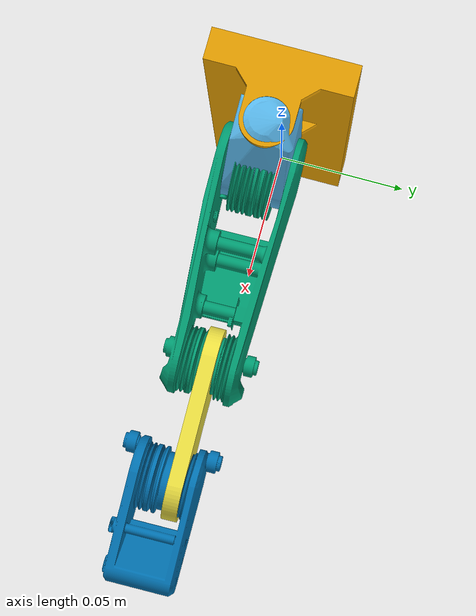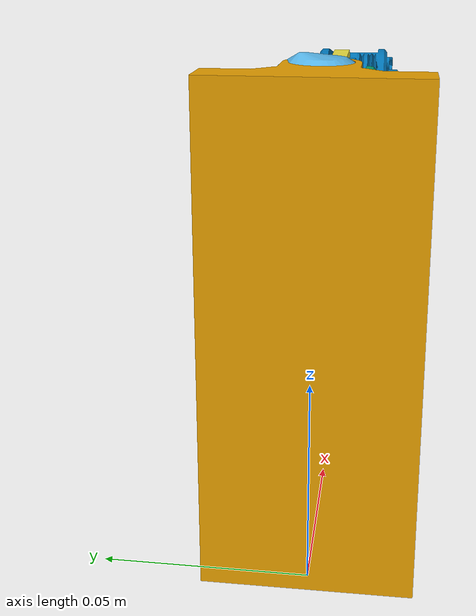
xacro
<?xml version="1.0"?>
<robot name="powerhouse_finger" xmlns:xacro="http://www.ros.org/wiki/xacro">

  <!-- Generated by blender_export.py from /home/jarmibe7/ws_rds/src/rds-powerhouse-software/finger_description/meshes/segment.blend -->

  <xacro:arg name="mesh_ext" default="gltf"/>
  <xacro:property name="ext" value="$(arg mesh_ext)"/>

  <material name="blue">
    <color rgba="0 0 1 1"/>
  </material>
  <material name="green">
    <color rgba="0 1 0 1"/>
  </material>
  <material name="red">
    <color rgba="1 0 0 1"/>
  </material>
  <material name="purple">
    <color rgba="1 0 1 1"/>
  </material>
  <material name="grey">
    <color rgba="0.5 0.5 0.5 1"/>
  </material>
  <material name="yellow">
    <color rgba="1 1 0 1"/>
  </material>

  <!-- Finger base -->
  <link name="base_link">
    <visual>
      <geometry>
        <mesh filename="package://finger_description/meshes/visual/base_link.${ext}"/>
      </geometry>
    </visual>
    <collision>
      <geometry>
        <mesh filename="package://finger_description/meshes/collision/col_base_link.${ext}"/>
      </geometry>
    </collision>
    <inertial>
      <mass value="0.05"/>
      <origin xyz="0 0 0" rpy="0 0 0"/>
      <inertia ixx="1e-05" ixy="0" ixz="0" iyy="1e-05" iyz="0" izz="1e-05"/>
    </inertial>
  </link>

  <!-- Mcp Splay -->
  <joint name="mcp_splay" type="revolute">
    <parent link="base_link"/>
    <child link="mcp_link"/>
    <origin xyz="0.0195 -0.0 0.0983" rpy="0 0 0"/>
    <axis xyz="0.0 0.0 1.0"/>
    <limit lower="-0.174533" upper="0.174533" effort="5.0" velocity="3.14"/>
    <dynamics damping="0.1" friction="0.05"/>
  </joint>

  <!-- Space between MCP splay and flexion -->
  <link name="mcp_link">
    <visual>
      <geometry>
        <mesh filename="package://finger_description/meshes/visual/mcp_link.${ext}"/>
      </geometry>
    </visual>
    <collision>
      <geometry>
        <mesh filename="package://finger_description/meshes/collision/col_mcp_link.${ext}"/>
      </geometry>
    </collision>
    <inertial>
      <mass value="0.01"/>
      <origin xyz="0 0 0" rpy="0 0 0"/>
      <inertia ixx="1e-05" ixy="0" ixz="0" iyy="1e-05" iyz="0" izz="1e-05"/>
    </inertial>
  </link>

  <!-- Mcp Flexion -->
  <joint name="mcp_flexion" type="revolute">
    <parent link="mcp_link"/>
    <child link="proximal_phalanx"/>
    <origin xyz="0.013 0.0 -0.0006" rpy="0 0 0"/>
    <axis xyz="0.0 1.0 0.0"/>
    <limit lower="0" upper="1.57" effort="5.0" velocity="3.14"/>
    <dynamics damping="0.1" friction="0.05"/>
  </joint>

  <!-- Proximal phalanx -->
  <link name="proximal_phalanx">
    <visual>
      <geometry>
        <mesh filename="package://finger_description/meshes/visual/proximal_phalanx.${ext}"/>
      </geometry>
    </visual>
    <collision>
      <geometry>
        <mesh filename="package://finger_description/meshes/collision/col_proximal_phalanx.${ext}"/>
      </geometry>
    </collision>
    <inertial>
      <mass value="0.01"/>
      <origin xyz="0 0 0" rpy="0 0 0"/>
      <inertia ixx="1e-05" ixy="0" ixz="0" iyy="1e-05" iyz="0" izz="1e-05"/>
    </inertial>
  </link>

  <!-- Pip Flexion -->
  <joint name="pip_flexion" type="revolute">
    <parent link="proximal_phalanx"/>
    <child link="middle_phalanx"/>
    <origin xyz="0.065 0.0 0.0004" rpy="0 0 0"/>
    <axis xyz="0.0 1.0 0.0"/>
    <limit lower="0.0" upper="1.57" effort="5.0" velocity="3.14"/>
    <dynamics damping="0.1" friction="0.05"/>
  </joint>

  <!-- Middle phalanx -->
  <link name="middle_phalanx">
    <visual>
      <geometry>
        <mesh filename="package://finger_description/meshes/visual/middle_phalanx.${ext}"/>
      </geometry>
    </visual>
    <collision>
      <geometry>
        <mesh filename="package://finger_description/meshes/collision/col_middle_phalanx.${ext}"/>
      </geometry>
    </collision>
    <inertial>
      <mass value="0.008"/>
      <origin xyz="0 0 0" rpy="0 0 0"/>
      <inertia ixx="5e-06" ixy="0" ixz="0" iyy="5e-06" iyz="0" izz="5e-06"/>
    </inertial>
  </link>

  <!-- Dip Flexion -->
  <joint name="dip_flexion" type="revolute">
    <parent link="middle_phalanx"/>
    <child link="distal_phalanx"/>
    <origin xyz="0.04 0.0 0.0002" rpy="0 0 0"/>
    <axis xyz="0.0 1.0 0.0"/>
    <limit lower="0.0" upper="1.57" effort="3.0" velocity="3.14"/>
    <dynamics damping="0.1" friction="0.05"/>
  </joint>

  <!-- Distal phalanx -->
  <link name="distal_phalanx">
    <visual>
      <geometry>
        <mesh filename="package://finger_description/meshes/visual/distal_phalanx.${ext}"/>
      </geometry>
    </visual>
    <collision>
      <geometry>
        <mesh filename="package://finger_description/meshes/collision/col_distal_phalanx.${ext}"/>
      </geometry>
    </collision>
    <inertial>
      <mass value="0.005"/>
      <origin xyz="0 0 0" rpy="0 0 0"/>
      <inertia ixx="2e-06" ixy="0" ixz="0" iyy="2e-06" iyz="0" izz="2e-06"/>
    </inertial>
  </link>

</robot>
